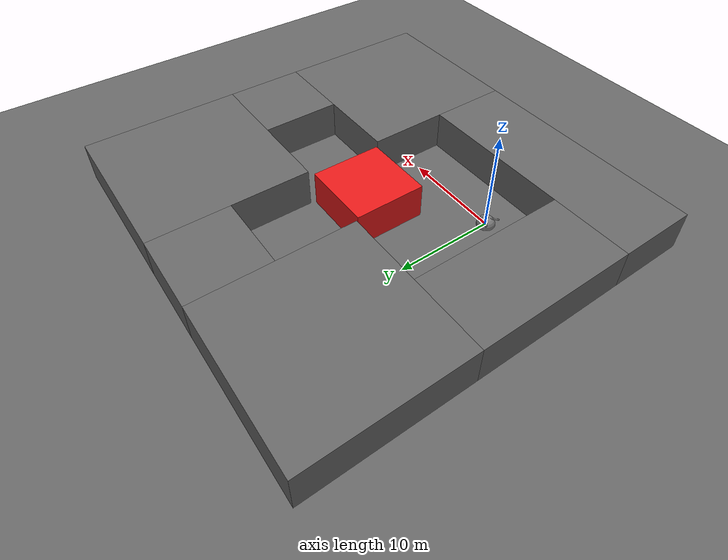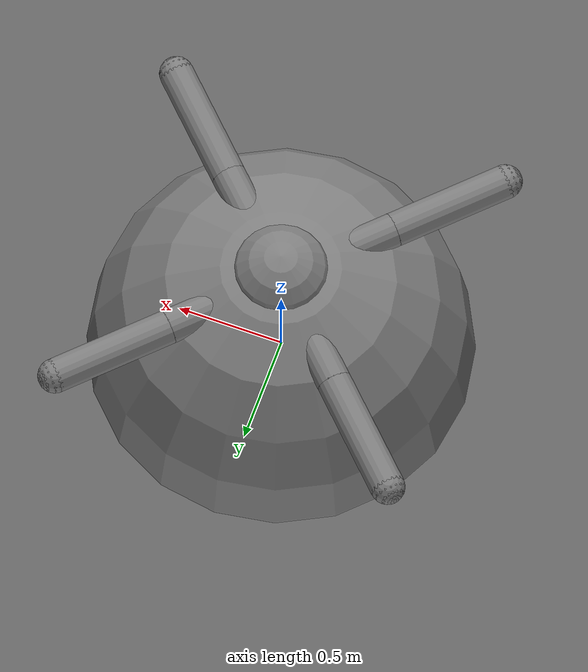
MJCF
<mujoco model="ant">
	<compiler angle="degree" coordinate="local" inertiafromgeom="true" />
	<option timestep="0.01" iterations="4" />
	<custom>
		<numeric data="0.0 0.0 0.75 1.0 0.0 0.0 0.0 0.0 1.0 0.0 -1.0 0.0 -1.0 0.0 1.0 0.0 0.0 0.0 0.0 0.0" name="init_qpos" />
		<numeric data="1000" name="constraint_limit_stiffness" />
		<numeric data="4000" name="constraint_stiffness" />
		<numeric data="10" name="constraint_ang_damping" />
		<numeric data="20" name="constraint_vel_damping" />
		<numeric data="0.5" name="joint_scale_pos" />
		<numeric data="0.2" name="joint_scale_ang" />
		<numeric data="0.0" name="ang_damping" />
		<numeric data="1" name="spring_mass_scale" />
		<numeric data="1" name="spring_inertia_scale" />
		<numeric data="15" name="solver_maxls" />
	</custom>
	<default>
		<joint armature="1" damping="1" limited="true" />
		<geom contype="0" conaffinity="0" condim="3" density="40.0" friction="1 0.5 0.5" solimp=".995 .995 .01" />
	</default>
	<asset>
		<texture builtin="gradient" height="100" rgb1="1 1 1" rgb2="0 0 0" type="skybox" width="100" />
		<texture builtin="flat" height="1278" mark="cross" markrgb="1 1 1" name="texgeom" random="0.01" rgb1="0.8 0.6 0.4" rgb2="0.8 0.6 0.4" type="cube" width="127" />
		<texture builtin="checker" height="100" name="texplane" rgb1="0 0 0" rgb2="0.8 0.8 0.8" type="2d" width="100" />
		<material name="MatPlane" reflectance="0.5" shininess="1" specular="1" texrepeat="60 60" texture="texplane" />
		<material name="geom" texture="texgeom" texuniform="true" />
	</asset>
	<worldbody>
		<light cutoff="100" diffuse="1 1 1" dir="-0 0 -1.3" directional="true" exponent="1" pos="0 0 1.3" specular=".1 .1 .1" />
		<geom conaffinity="1" condim="3" material="MatPlane" name="floor" pos="0 0 0" size="150 150 40" type="plane" />
		<body name="torso" pos="0 0 0.75">
			<camera name="track" mode="trackcom" pos="0 -3 0.3" xyaxes="1 0 0 0 0 1" />
			<geom name="torso_geom" pos="0 0 0" size="0.25" type="sphere" contype="1"/>
			<joint armature="0" damping="0" limited="false" margin="0.01" name="root" pos="0 0 0" type="free" />
			<body name="front_left_leg" pos="0 0 0">
				<geom fromto="0.0 0.0 0.0 0.2 0.2 0.0" name="aux_1_geom" size="0.08" type="capsule" />
				<body name="aux_1" pos="0.2 0.2 0">
					<joint axis="0 0 1" name="hip_1" pos="0.0 0.0 0.0" range="-30 30" type="hinge" />
					<geom fromto="0.0 0.0 0.0 0.2 0.2 0.0" name="left_leg_geom" size="0.08" type="capsule" />
					<body pos="0.2 0.2 0">
						<joint axis="-1 1 0" name="ankle_1" pos="0.0 0.0 0.0" range="30 70" type="hinge" />
						<geom fromto="0.0 0.0 0.0 0.4 0.4 0.0" name="left_ankle_geom" size="0.08" type="capsule" />
						<geom name="left_foot_geom" contype="1" pos="0.4 0.4 0" size="0.08" type="sphere" mass="0" />
					</body>
				</body>
			</body>
			<body name="front_right_leg" pos="0 0 0">
				<geom fromto="0.0 0.0 0.0 -0.2 0.2 0.0" name="aux_2_geom" size="0.08" type="capsule" />
				<body name="aux_2" pos="-0.2 0.2 0">
					<joint axis="0 0 1" name="hip_2" pos="0.0 0.0 0.0" range="-30 30" type="hinge" />
					<geom fromto="0.0 0.0 0.0 -0.2 0.2 0.0" name="right_leg_geom" size="0.08" type="capsule" />
					<body pos="-0.2 0.2 0">
						<joint axis="1 1 0" name="ankle_2" pos="0.0 0.0 0.0" range="-70 -30" type="hinge" />
						<geom fromto="0.0 0.0 0.0 -0.4 0.4 0.0" name="right_ankle_geom" size="0.08" type="capsule" />
						<geom name="right_foot_geom" contype="1" pos="-0.4 0.4 0" size="0.08" type="sphere" mass="0" />
					</body>
				</body>
			</body>
			<body name="back_leg" pos="0 0 0">
				<geom fromto="0.0 0.0 0.0 -0.2 -0.2 0.0" name="aux_3_geom" size="0.08" type="capsule" />
				<body name="aux_3" pos="-0.2 -0.2 0">
					<joint axis="0 0 1" name="hip_3" pos="0.0 0.0 0.0" range="-30 30" type="hinge" />
					<geom fromto="0.0 0.0 0.0 -0.2 -0.2 0.0" name="back_leg_geom" size="0.08" type="capsule" />
					<body pos="-0.2 -0.2 0">
						<joint axis="-1 1 0" name="ankle_3" pos="0.0 0.0 0.0" range="-70 -30" type="hinge" />
						<geom fromto="0.0 0.0 0.0 -0.4 -0.4 0.0" name="third_ankle_geom" size="0.08" type="capsule" />
						<geom name="third_foot_geom" contype="1" pos="-0.4 -0.4 0" size="0.08" type="sphere" mass="0" />
					</body>
				</body>
			</body>
			<body name="right_back_leg" pos="0 0 0">
				<geom fromto="0.0 0.0 0.0 0.2 -0.2 0.0" name="aux_4_geom" size="0.08" type="capsule" />
				<body name="aux_4" pos="0.2 -0.2 0">
					<joint axis="0 0 1" name="hip_4" pos="0.0 0.0 0.0" range="-30 30" type="hinge" />
					<geom fromto="0.0 0.0 0.0 0.2 -0.2 0.0" name="rightback_leg_geom" size="0.08" type="capsule" />
					<body pos="0.2 -0.2 0">
						<joint axis="1 1 0" name="ankle_4" pos="0.0 0.0 0.0" range="30 70" type="hinge" />
						<geom fromto="0.0 0.0 0.0 0.4 -0.4 0.0" name="fourth_ankle_geom" size="0.08" type="capsule" />
						<geom name="fourth_foot_geom" contype="1" pos="0.4 -0.4 0" size="0.08" type="sphere" mass="0" />
					</body>
				</body>
			</body>
		</body>

		<!-- Blocks are manually fused in the following way to reduce number of contact pairs:
            AABCC
            AA_CC
            D_M_E
            D__FF
            GGGFF
        -->

		<geom name="block_A" pos="-4.000000 20.000000 2.000000" size="8.000000 8.000000 2.000000" type="box" material="" contype="0" conaffinity="1" rgba="0.4 0.4 0.4 1" />
		<geom name="block_B" pos="8.000000 24.000000 2.000000" size="4.000000 4.000000 2.000000" type="box" material="" contype="0" conaffinity="1" rgba="0.4 0.4 0.4 1" />
		<geom name="block_C" pos="20.000000 20.000000 2.000000" size="8.000000 8.000000 2.000000" type="box" material="" contype="0" conaffinity="1" rgba="0.4 0.4 0.4 1" />
		<geom name="block_D" pos="-8.000000 4.000000 2.000000" size="4.000000 8.000000 2.000000" type="box" material="" contype="0" conaffinity="1" rgba="0.4 0.4 0.4 1" />
		<geom name="block_E" pos="24.000000 8.000000 2.000000" size="4.000000 4.000000 2.000000" type="box" material="" contype="0" conaffinity="1" rgba="0.4 0.4 0.4 1" />
		<geom name="block_F" pos="20.000000 -4.000000 2.000000" size="8.000000 8.000000 2.000000" type="box" material="" contype="0" conaffinity="1" rgba="0.4 0.4 0.4 1" />
		<geom name="block_G" pos="0.000000 -8.000000 2.000000" size="12.000000 4.000000 2.000000" type="box" material="" contype="0" conaffinity="1" rgba="0.4 0.4 0.4 1" />

		<body name="movable" pos="8.000000 8.000000 2.000000">
			<geom name="block_M" pos="0 0 0" size="3.600000 3.600000 1.800000" type="box" material="" mass="0.0002" contype="1" conaffinity="1" rgba="0.9 0.1 0.1 1" />
			<joint armature="0" axis="1 0 0" damping="0.0" limited="false" range="-32.000000 32.000000" margin="0.01" name="movable_x_2_2" pos="0 0 0" type="slide" />
			<joint armature="0" axis="0 1 0" damping="0.0" limited="false" range="-32.000000 32.000000" margin="0.01" name="movable_y_2_2" pos="0 0 0" type="slide" />
			<joint armature="0" axis="0 0 1" damping="0.0" limited="false" range="-32.000000 32.000000" margin="0.01" name="movable_z_2_2" pos="0 0 0" type="slide" />
		</body>

		<body name="target" pos="0 0 0.01">
			<joint armature="0" axis="1 0 0" damping="0" limited="true" name="target_x" pos="0 0 0" range="-20 20" stiffness="0" type="slide" />
			<joint armature="0" axis="0 1 0" damping="0" limited="true" name="target_y" pos="0 0 0" range="-20 20" stiffness="0" type="slide" />
			<geom conaffinity="0" contype="0" name="target" pos="0 0 0" size=".9" type="sphere" mass="1" />
		</body>
	</worldbody>
	<actuator>
		<motor ctrllimited="true" ctrlrange="-1.0 1.0" joint="hip_4" gear="150" />
		<motor ctrllimited="true" ctrlrange="-1.0 1.0" joint="ankle_4" gear="150" />
		<motor ctrllimited="true" ctrlrange="-1.0 1.0" joint="hip_1" gear="150" />
		<motor ctrllimited="true" ctrlrange="-1.0 1.0" joint="ankle_1" gear="150" />
		<motor ctrllimited="true" ctrlrange="-1.0 1.0" joint="hip_2" gear="150" />
		<motor ctrllimited="true" ctrlrange="-1.0 1.0" joint="ankle_2" gear="150" />
		<motor ctrllimited="true" ctrlrange="-1.0 1.0" joint="hip_3" gear="150" />
		<motor ctrllimited="true" ctrlrange="-1.0 1.0" joint="ankle_3" gear="150" />
	</actuator>
</mujoco>
